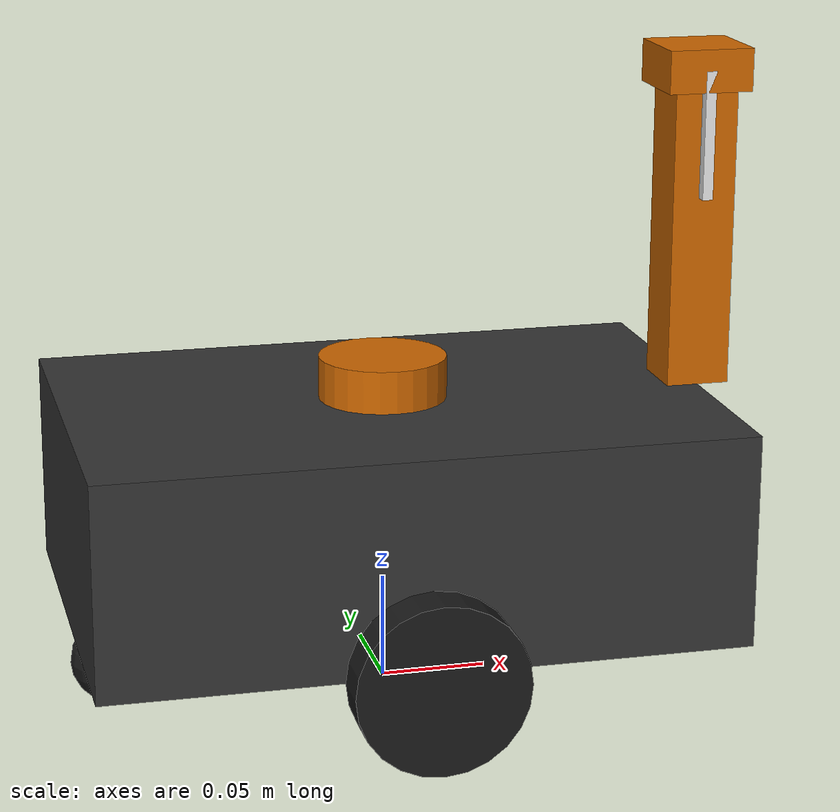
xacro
<?xml version="1.0"?>
<robot xmlns:xacro="http://www.ros.org/wiki/xacro" name="task_bot">

  <!-- ==================== Materials ==================== -->
  <material name="chassis_color">
    <color rgba="0.2 0.2 0.2 1.0"/>
  </material>
  <material name="wheel_color">
    <color rgba="0.1 0.1 0.1 1.0"/>
  </material>
  <material name="arm_color">
    <color rgba="0.8 0.4 0.0 1.0"/>
  </material>
  <material name="gripper_color">
    <color rgba="0.9 0.9 0.9 1.0"/>
  </material>

  <!-- ==================== Properties ==================== -->
  <xacro:property name="chassis_length" value="0.3"/>
  <xacro:property name="chassis_width" value="0.2"/>
  <xacro:property name="chassis_height" value="0.1"/>
  <xacro:property name="wheel_radius" value="0.04"/>
  <xacro:property name="wheel_width" value="0.02"/>
  <xacro:property name="caster_radius" value="0.02"/>
  <xacro:property name="arm_length" value="0.15"/>
  <xacro:property name="arm_width" value="0.03"/>
  <xacro:property name="gripper_length" value="0.06"/>
  <xacro:property name="gripper_width" value="0.005"/>

  <!-- ==================== Base Footprint ==================== -->
  <link name="base_footprint"/>

  <!-- ==================== Chassis ==================== -->
  <link name="base_link">
    <visual>
      <geometry>
        <box size="${chassis_length} ${chassis_width} ${chassis_height}"/>
      </geometry>
      <material name="chassis_color"/>
    </visual>
    <collision>
      <geometry>
        <box size="${chassis_length} ${chassis_width} ${chassis_height}"/>
      </geometry>
    </collision>
    <inertial>
      <mass value="5.0"/>
      <inertia ixx="0.02" ixy="0" ixz="0" iyy="0.04" iyz="0" izz="0.05"/>
    </inertial>
  </link>

  <joint name="base_footprint_joint" type="fixed">
    <parent link="base_footprint"/>
    <child link="base_link"/>
    <origin xyz="0 0 ${wheel_radius + chassis_height/2}" rpy="0 0 0"/>
  </joint>

  <!-- ==================== Drive Wheels ==================== -->
  <xacro:macro name="drive_wheel" params="prefix y_offset">
    <link name="${prefix}_wheel">
      <visual>
        <geometry>
          <cylinder radius="${wheel_radius}" length="${wheel_width}"/>
        </geometry>
        <material name="wheel_color"/>
      </visual>
      <collision>
        <geometry>
          <cylinder radius="${wheel_radius}" length="${wheel_width}"/>
        </geometry>
      </collision>
      <inertial>
        <mass value="0.3"/>
        <inertia ixx="0.0002" ixy="0" ixz="0" iyy="0.0002" iyz="0" izz="0.0003"/>
      </inertial>
    </link>
    <joint name="${prefix}_wheel_joint" type="continuous">
      <parent link="base_link"/>
      <child link="${prefix}_wheel"/>
      <origin xyz="0 ${y_offset} ${-chassis_height/2}" rpy="${-pi/2} 0 0"/>
      <axis xyz="0 0 1"/>
    </joint>
  </xacro:macro>

  <xacro:drive_wheel prefix="left" y_offset="${chassis_width/2 + wheel_width/2}"/>
  <xacro:drive_wheel prefix="right" y_offset="${-chassis_width/2 - wheel_width/2}"/>

  <!-- ==================== Caster Wheel ==================== -->
  <link name="caster_wheel">
    <visual>
      <geometry>
        <sphere radius="${caster_radius}"/>
      </geometry>
      <material name="wheel_color"/>
    </visual>
    <collision>
      <geometry>
        <sphere radius="${caster_radius}"/>
      </geometry>
    </collision>
    <inertial>
      <mass value="0.1"/>
      <inertia ixx="0.00001" ixy="0" ixz="0" iyy="0.00001" iyz="0" izz="0.00001"/>
    </inertial>
  </link>

  <joint name="caster_joint" type="fixed">
    <parent link="base_link"/>
    <child link="caster_wheel"/>
    <origin xyz="${-chassis_length/2 + caster_radius} 0 ${-chassis_height/2 - wheel_radius + caster_radius}" rpy="0 0 0"/>
  </joint>

  <!-- ==================== 2-DOF Arm ==================== -->

  <!-- Shoulder: revolute joint (0 to 1.57 rad) -->
  <link name="arm_link">
    <visual>
      <origin xyz="0 0 ${arm_length/2}" rpy="0 0 0"/>
      <geometry>
        <box size="${arm_width} ${arm_width} ${arm_length}"/>
      </geometry>
      <material name="arm_color"/>
    </visual>
    <collision>
      <origin xyz="0 0 ${arm_length/2}" rpy="0 0 0"/>
      <geometry>
        <box size="${arm_width} ${arm_width} ${arm_length}"/>
      </geometry>
    </collision>
    <inertial>
      <origin xyz="0 0 ${arm_length/2}" rpy="0 0 0"/>
      <mass value="0.5"/>
      <inertia ixx="0.001" ixy="0" ixz="0" iyy="0.001" iyz="0" izz="0.0001"/>
    </inertial>
  </link>

  <joint name="shoulder_joint" type="revolute">
    <parent link="base_link"/>
    <child link="arm_link"/>
    <origin xyz="${chassis_length/2} 0 ${chassis_height/2}" rpy="0 0 0"/>
    <axis xyz="0 1 0"/>
    <limit lower="0" upper="1.5708" effort="10" velocity="1.0"/>
  </joint>

  <!-- Gripper base (at end of arm) -->
  <link name="gripper_base">
    <visual>
      <geometry>
        <box size="0.04 0.04 0.02"/>
      </geometry>
      <material name="arm_color"/>
    </visual>
    <collision>
      <geometry>
        <box size="0.04 0.04 0.02"/>
      </geometry>
    </collision>
    <inertial>
      <mass value="0.1"/>
      <inertia ixx="0.00001" ixy="0" ixz="0" iyy="0.00001" iyz="0" izz="0.00001"/>
    </inertial>
  </link>

  <joint name="gripper_base_joint" type="fixed">
    <parent link="arm_link"/>
    <child link="gripper_base"/>
    <origin xyz="0 0 ${arm_length}" rpy="0 0 0"/>
  </joint>

  <!-- Left gripper finger: prismatic (0 to 0.04m) -->
  <link name="left_finger">
    <visual>
      <origin xyz="0 0 ${-gripper_length/2}" rpy="0 0 0"/>
      <geometry>
        <box size="${gripper_width} 0.02 ${gripper_length}"/>
      </geometry>
      <material name="gripper_color"/>
    </visual>
    <collision>
      <origin xyz="0 0 ${-gripper_length/2}" rpy="0 0 0"/>
      <geometry>
        <box size="${gripper_width} 0.02 ${gripper_length}"/>
      </geometry>
    </collision>
    <inertial>
      <origin xyz="0 0 ${-gripper_length/2}" rpy="0 0 0"/>
      <mass value="0.05"/>
      <inertia ixx="0.000005" ixy="0" ixz="0" iyy="0.000005" iyz="0" izz="0.000001"/>
    </inertial>
  </link>

  <joint name="left_finger_joint" type="prismatic">
    <parent link="gripper_base"/>
    <child link="left_finger"/>
    <origin xyz="0 0.01 0" rpy="0 0 0"/>
    <axis xyz="0 1 0"/>
    <limit lower="0" upper="0.04" effort="5" velocity="0.5"/>
  </joint>

  <!-- Right gripper finger: prismatic (mirrored) -->
  <link name="right_finger">
    <visual>
      <origin xyz="0 0 ${-gripper_length/2}" rpy="0 0 0"/>
      <geometry>
        <box size="${gripper_width} 0.02 ${gripper_length}"/>
      </geometry>
      <material name="gripper_color"/>
    </visual>
    <collision>
      <origin xyz="0 0 ${-gripper_length/2}" rpy="0 0 0"/>
      <geometry>
        <box size="${gripper_width} 0.02 ${gripper_length}"/>
      </geometry>
    </collision>
    <inertial>
      <origin xyz="0 0 ${-gripper_length/2}" rpy="0 0 0"/>
      <mass value="0.05"/>
      <inertia ixx="0.000005" ixy="0" ixz="0" iyy="0.000005" iyz="0" izz="0.000001"/>
    </inertial>
  </link>

  <joint name="right_finger_joint" type="prismatic">
    <parent link="gripper_base"/>
    <child link="right_finger"/>
    <origin xyz="0 -0.01 0" rpy="0 0 0"/>
    <axis xyz="0 -1 0"/>
    <limit lower="0" upper="0.04" effort="5" velocity="0.5"/>
  </joint>

  <!-- ==================== Sensors ==================== -->

  <!-- 2D Lidar -->
  <link name="lidar_link">
    <visual>
      <geometry>
        <cylinder radius="0.03" length="0.02"/>
      </geometry>
      <material name="arm_color"/>
    </visual>
    <inertial>
      <mass value="0.1"/>
      <inertia ixx="0.00001" ixy="0" ixz="0" iyy="0.00001" iyz="0" izz="0.00001"/>
    </inertial>
  </link>

  <joint name="lidar_joint" type="fixed">
    <parent link="base_link"/>
    <child link="lidar_link"/>
    <origin xyz="0 0 ${chassis_height/2 + 0.01}" rpy="0 0 0"/>
  </joint>

  <!-- IMU -->
  <link name="imu_link">
    <inertial>
      <mass value="0.01"/>
      <inertia ixx="0.000001" ixy="0" ixz="0" iyy="0.000001" iyz="0" izz="0.000001"/>
    </inertial>
  </link>

  <joint name="imu_joint" type="fixed">
    <parent link="base_link"/>
    <child link="imu_link"/>
    <origin xyz="0 0 0" rpy="0 0 0"/>
  </joint>

  <!-- ==================== Gazebo Plugins ==================== -->
  <gazebo>
    <!-- Differential drive -->
    <plugin filename="gz-sim-diff-drive-system" name="gz::sim::systems::DiffDrive">
      <left_joint>left_wheel_joint</left_joint>
      <right_joint>right_wheel_joint</right_joint>
      <wheel_separation>${chassis_width + wheel_width}</wheel_separation>
      <wheel_radius>${wheel_radius}</wheel_radius>
      <max_linear_acceleration>1.0</max_linear_acceleration>
      <max_angular_acceleration>2.0</max_angular_acceleration>
      <odom_publish_frequency>50</odom_publish_frequency>
      <topic>/cmd_vel</topic>
      <odom_topic>/odom</odom_topic>
      <frame_id>odom</frame_id>
      <child_frame_id>base_footprint</child_frame_id>
    </plugin>

    <!-- Joint state publisher -->
    <plugin filename="gz-sim-joint-state-publisher-system" name="gz::sim::systems::JointStatePublisher">
      <joint_name>left_wheel_joint</joint_name>
      <joint_name>right_wheel_joint</joint_name>
      <joint_name>shoulder_joint</joint_name>
      <joint_name>left_finger_joint</joint_name>
      <joint_name>right_finger_joint</joint_name>
    </plugin>

    <!-- Joint position controller for arm -->
    <plugin filename="gz-sim-joint-position-controller-system" name="gz::sim::systems::JointPositionController">
      <joint_name>shoulder_joint</joint_name>
      <topic>/shoulder_cmd</topic>
      <p_gain>20</p_gain>
      <i_gain>0.1</i_gain>
      <d_gain>1.0</d_gain>
    </plugin>

    <plugin filename="gz-sim-joint-position-controller-system" name="gz::sim::systems::JointPositionController">
      <joint_name>left_finger_joint</joint_name>
      <topic>/gripper_cmd</topic>
      <p_gain>10</p_gain>
      <i_gain>0.1</i_gain>
      <d_gain>0.5</d_gain>
    </plugin>

    <plugin filename="gz-sim-joint-position-controller-system" name="gz::sim::systems::JointPositionController">
      <joint_name>right_finger_joint</joint_name>
      <topic>/gripper_cmd</topic>
      <p_gain>10</p_gain>
      <i_gain>0.1</i_gain>
      <d_gain>0.5</d_gain>
    </plugin>
  </gazebo>

  <!-- Lidar sensor -->
  <gazebo reference="lidar_link">
    <sensor name="lidar" type="gpu_lidar">
      <always_on>true</always_on>
      <update_rate>10</update_rate>
      <topic>/scan</topic>
      <lidar>
        <scan>
          <horizontal>
            <samples>360</samples>
            <resolution>1</resolution>
            <min_angle>-3.14159</min_angle>
            <max_angle>3.14159</max_angle>
          </horizontal>
        </scan>
        <range>
          <min>0.1</min>
          <max>8.0</max>
          <resolution>0.01</resolution>
        </range>
      </lidar>
    </sensor>
  </gazebo>

  <!-- IMU sensor -->
  <gazebo reference="imu_link">
    <sensor name="imu" type="imu">
      <always_on>true</always_on>
      <update_rate>100</update_rate>
      <topic>/imu</topic>
    </sensor>
  </gazebo>

</robot>
